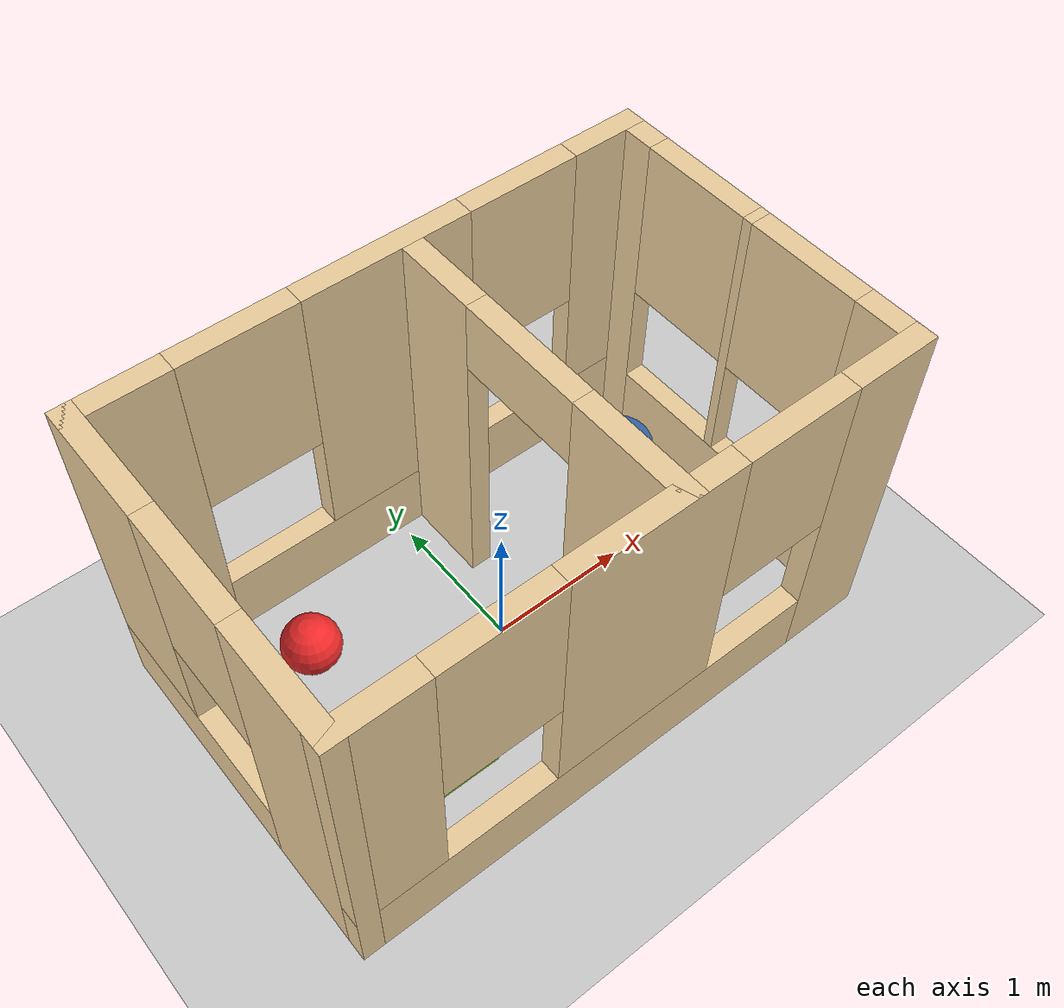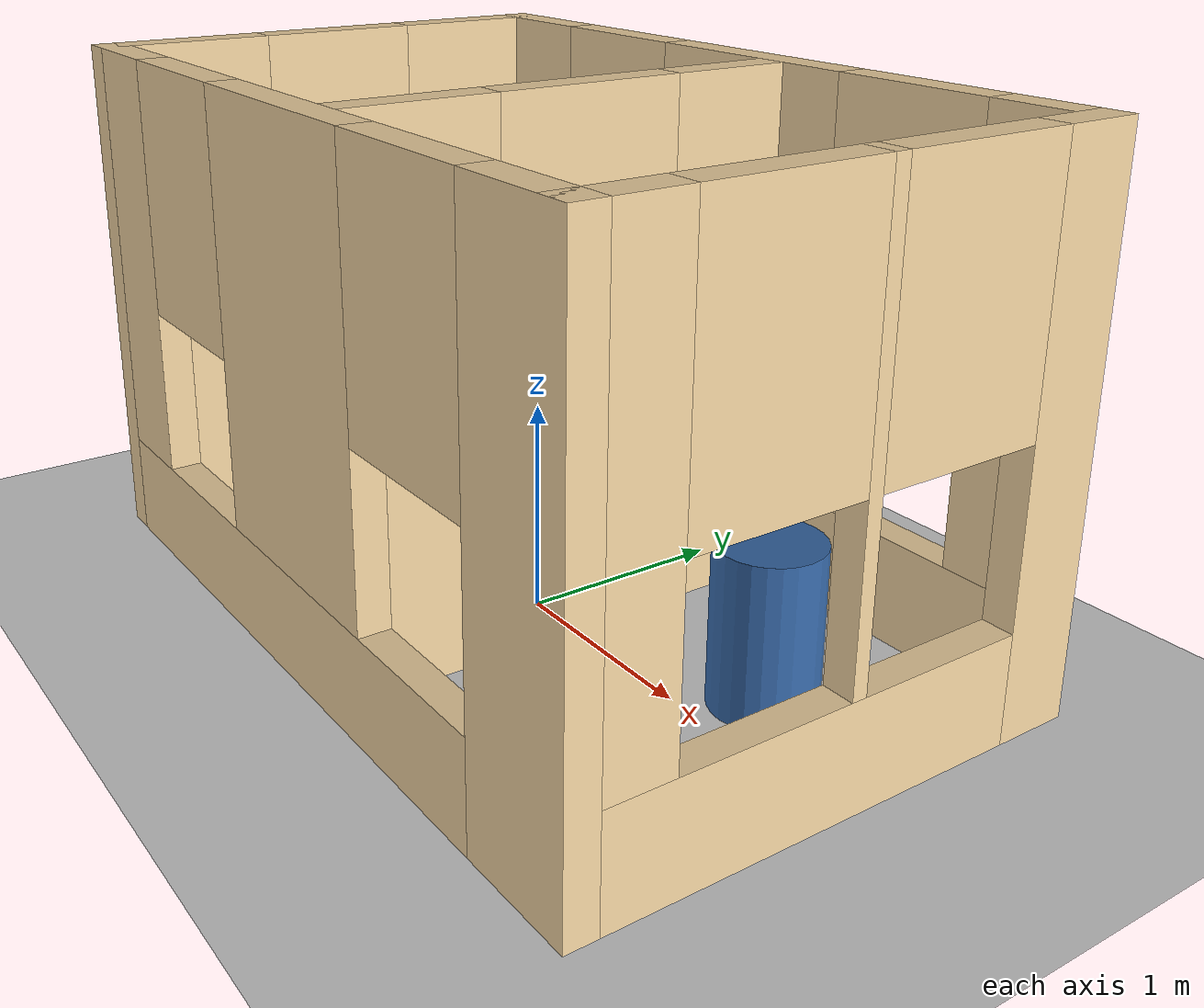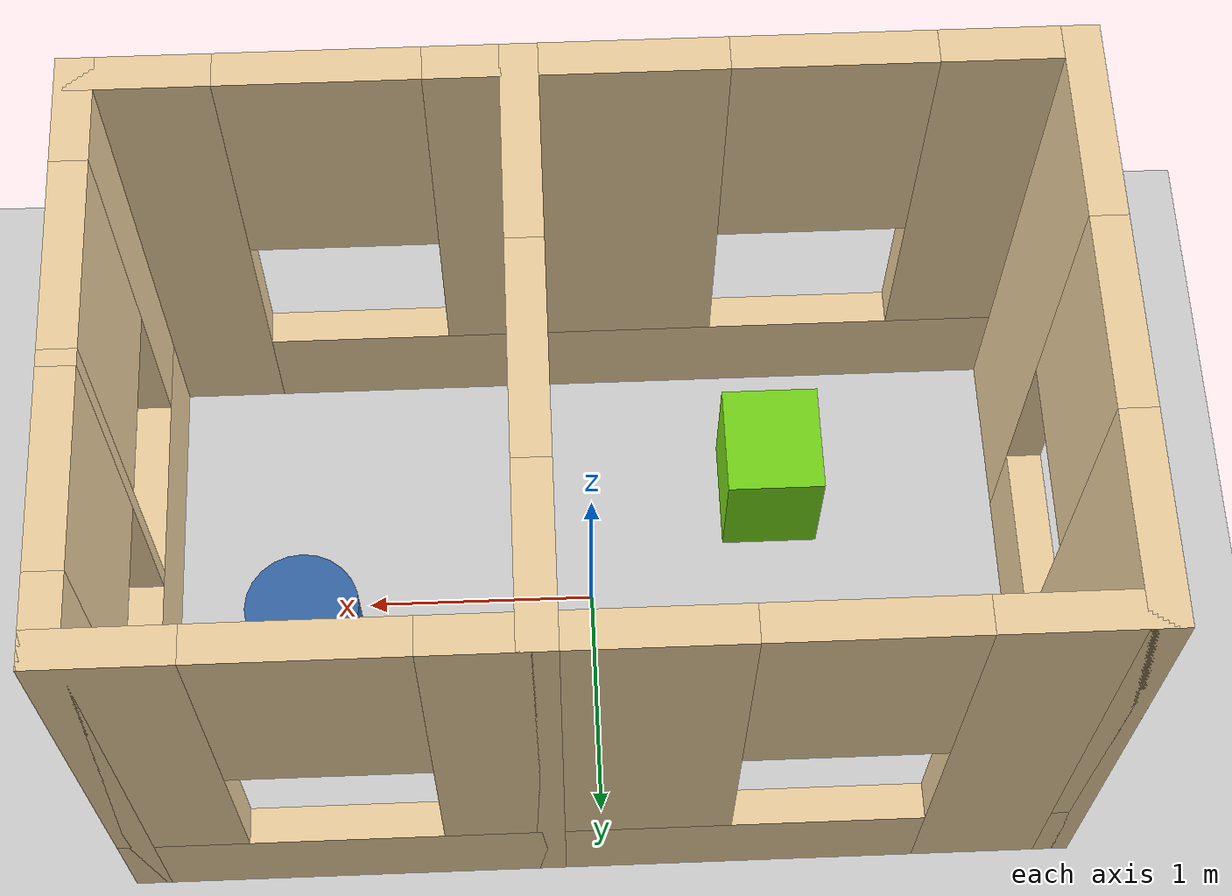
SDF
<sdf version="1.6">
 <world name="default">
  <light name="sun" type="directional">
   <pose>0 0 10 0 -0 0</pose>
   <diffuse>0.8 0.8 0.8 1</diffuse>
   <specular>0.2 0.2 0.2 1</specular>
   <attenuation>
    <range>1000</range>
    <constant>0.9</constant>
    <linear>0.01</linear>
    <quadratic>0.001</quadratic>
   </attenuation>
   <direction>-0.5 0.1 -0.9</direction>
  </light>
  <model name="ground_plane">
   <static>1</static>
   <link name="link">
    <collision name="collision">
     <geometry><plane><normal>0 0 1</normal><size>100 100</size></plane></geometry>
     <surface>
      <contact><collide_bitmask>65535</collide_bitmask></contact>
      <friction><ode><mu>100</mu><mu2>50</mu2></ode></friction>
     </surface>
    </collision>
    <visual name="visual">
     <cast_shadows>0</cast_shadows>
     <geometry><plane><normal>0 0 1</normal><size>100 100</size></plane></geometry>
     <material>
      <script><uri>file://media/materials/scripts/gazebo.material</uri><name>Gazebo/Grey</name></script>
     </material>
    </visual>
   </link>
  </model>
  <gravity>0 0 -9.8</gravity>
  <magnetic_field>6e-06 2.3e-05 -4.2e-05</magnetic_field>
  <atmosphere type="adiabatic"/>
  <physics name="default_physics" default="0" type="ode">
   <max_step_size>0.001</max_step_size>
   <real_time_factor>1</real_time_factor>
   <real_time_update_rate>1000</real_time_update_rate>
  </physics>
  <scene><ambient>0.4 0.4 0.4 1</ambient><background>0.7 0.7 0.7 1</background><shadows>1</shadows></scene>
  <spherical_coordinates>
   <surface_model>EARTH_WGS84</surface_model>
   <latitude_deg>0</latitude_deg>
   <longitude_deg>0</longitude_deg>
   <elevation>0</elevation>
   <heading_deg>0</heading_deg>
  </spherical_coordinates>
  <model name="house">
   <link name="Wall_0">
    <pose>-1.925 0 0 0 -0 1.5708</pose>
    <visual name="Wall_0_Visual_0">
     <pose>-0.8225 0 1.25 0 -0 0</pose>
     <geometry><box><size>0.855 0.15 2.5</size></box></geometry>
     <material>
      <script><uri>file://media/materials/scripts/gazebo.material</uri><name>Gazebo/Grey</name></script>
      <ambient>0.921569 0.807843 0.615686 1</ambient>
     </material>
     <meta><layer>0</layer></meta>
    </visual>
    <collision name="Wall_0_Collision_0">
     <geometry><box><size>0.855 0.15 2.5</size></box></geometry>
     <pose>-0.8225 0 1.25 0 -0 0</pose>
    </collision>
    <visual name="Wall_0_Visual_1">
     <pose>0.4275 0 0.25 0 -0 0</pose>
     <geometry><box><size>1.645 0.15 0.5</size></box></geometry>
     <material>
      <script><uri>file://media/materials/scripts/gazebo.material</uri><name>Gazebo/Grey</name></script>
      <ambient>0.921569 0.807843 0.615686 1</ambient>
     </material>
     <meta><layer>0</layer></meta>
    </visual>
    <collision name="Wall_0_Collision_1">
     <geometry><box><size>1.645 0.15 0.5</size></box></geometry>
     <pose>0.4275 0 0.25 0 -0 0</pose>
    </collision>
    <visual name="Wall_0_Visual_2">
     <pose>0.8275 0 1.5 0 -0 0</pose>
     <geometry><box><size>0.845 0.15 2</size></box></geometry>
     <material>
      <script><uri>file://media/materials/scripts/gazebo.material</uri><name>Gazebo/Grey</name></script>
      <ambient>0.921569 0.807843 0.615686 1</ambient>
     </material>
     <meta><layer>0</layer></meta>
    </visual>
    <collision name="Wall_0_Collision_2">
     <geometry><box><size>0.845 0.15 2</size></box></geometry>
     <pose>0.8275 0 1.5 0 -0 0</pose>
    </collision>
    <visual name="Wall_0_Visual_3">
     <pose>0.005 0 1.9 0 -0 0</pose>
     <geometry><box><size>0.8 0.15 1.2</size></box></geometry>
     <material>
      <script><uri>file://media/materials/scripts/gazebo.material</uri><name>Gazebo/Grey</name></script>
      <ambient>0.921569 0.807843 0.615686 1</ambient>
     </material>
     <meta><layer>0</layer></meta>
    </visual>
    <collision name="Wall_0_Collision_3">
     <geometry><box><size>0.8 0.15 1.2</size></box></geometry>
     <pose>0.005 0 1.9 0 -0 0</pose>
    </collision>
   </link>
   <link name="Wall_1">
    <pose>0 1.175 0 0 -0 0</pose>
    <visual name="Wall_1_Visual_0">
     <pose>-1.6625 0 1.25 0 -0 0</pose>
     <geometry><box><size>0.675 0.15 2.5</size></box></geometry>
     <material>
      <script><uri>file://media/materials/scripts/gazebo.material</uri><name>Gazebo/Grey</name></script>
      <ambient>0.921569 0.807843 0.615686 1</ambient>
     </material>
     <meta><layer>0</layer></meta>
    </visual>
    <collision name="Wall_1_Collision_0">
     <geometry><box><size>0.675 0.15 2.5</size></box></geometry>
     <pose>-1.6625 0 1.25 0 -0 0</pose>
    </collision>
    <visual name="Wall_1_Visual_1">
     <pose>0.3375 0 0.25 0 -0 0</pose>
     <geometry><box><size>3.325 0.15 0.5</size></box></geometry>
     <material>
      <script><uri>file://media/materials/scripts/gazebo.material</uri><name>Gazebo/Grey</name></script>
      <ambient>0.921569 0.807843 0.615686 1</ambient>
     </material>
     <meta><layer>0</layer></meta>
    </visual>
    <collision name="Wall_1_Collision_1">
     <geometry><box><size>3.325 0.15 0.5</size></box></geometry>
     <pose>0.3375 0 0.25 0 -0 0</pose>
    </collision>
    <visual name="Wall_1_Visual_2">
     <pose>0.065 0 1.5 0 -0 0</pose>
     <geometry><box><size>1.18 0.15 2</size></box></geometry>
     <material>
      <script><uri>file://media/materials/scripts/gazebo.material</uri><name>Gazebo/Grey</name></script>
      <ambient>0.921569 0.807843 0.615686 1</ambient>
     </material>
     <meta><layer>0</layer></meta>
    </visual>
    <collision name="Wall_1_Collision_2">
     <geometry><box><size>1.18 0.15 2</size></box></geometry>
     <pose>0.065 0 1.5 0 -0 0</pose>
    </collision>
    <visual name="Wall_1_Visual_3">
     <pose>1.7275 0 1.5 0 -0 0</pose>
     <geometry><box><size>0.545 0.15 2</size></box></geometry>
     <material>
      <script><uri>file://media/materials/scripts/gazebo.material</uri><name>Gazebo/Grey</name></script>
      <ambient>0.921569 0.807843 0.615686 1</ambient>
     </material>
     <meta><layer>0</layer></meta>
    </visual>
    <collision name="Wall_1_Collision_3">
     <geometry><box><size>0.545 0.15 2</size></box></geometry>
     <pose>1.7275 0 1.5 0 -0 0</pose>
    </collision>
    <visual name="Wall_1_Visual_4">
     <pose>-0.925 0 1.9 0 -0 0</pose>
     <geometry><box><size>0.8 0.15 1.2</size></box></geometry>
     <material>
      <script><uri>file://media/materials/scripts/gazebo.material</uri><name>Gazebo/Grey</name></script>
      <ambient>0.921569 0.807843 0.615686 1</ambient>
     </material>
     <meta><layer>0</layer></meta>
    </visual>
    <collision name="Wall_1_Collision_4">
     <geometry><box><size>0.8 0.15 1.2</size></box></geometry>
     <pose>-0.925 0 1.9 0 -0 0</pose>
    </collision>
    <visual name="Wall_1_Visual_5">
     <pose>1.055 0 1.9 0 -0 0</pose>
     <geometry><box><size>0.8 0.15 1.2</size></box></geometry>
     <material>
      <script><uri>file://media/materials/scripts/gazebo.material</uri><name>Gazebo/Grey</name></script>
      <ambient>0.921569 0.807843 0.615686 1</ambient>
     </material>
     <meta><layer>0</layer></meta>
    </visual>
    <collision name="Wall_1_Collision_5">
     <geometry><box><size>0.8 0.15 1.2</size></box></geometry>
     <pose>1.055 0 1.9 0 -0 0</pose>
    </collision>
   </link>
   <link name="Wall_3">
    <pose>0 -1.175 0 0 -0 3.14159</pose>
    <visual name="Wall_3_Visual_0">
     <pose>-1.7025 0 1.25 0 -0 0</pose>
     <geometry><box><size>0.595 0.15 2.5</size></box></geometry>
     <material>
      <script><uri>file://media/materials/scripts/gazebo.material</uri><name>Gazebo/Grey</name></script>
      <ambient>0.921569 0.807843 0.615686 1</ambient>
     </material>
     <meta><layer>0</layer></meta>
    </visual>
    <collision name="Wall_3_Collision_0">
     <geometry><box><size>0.595 0.15 2.5</size></box></geometry>
     <pose>-1.7025 0 1.25 0 -0 0</pose>
    </collision>
    <visual name="Wall_3_Visual_1">
     <pose>0.2975 0 0.25 0 -0 0</pose>
     <geometry><box><size>3.405 0.15 0.5</size></box></geometry>
     <material>
      <script><uri>file://media/materials/scripts/gazebo.material</uri><name>Gazebo/Grey</name></script>
      <ambient>0.921569 0.807843 0.615686 1</ambient>
     </material>
     <meta><layer>0</layer></meta>
    </visual>
    <collision name="Wall_3_Collision_1">
     <geometry><box><size>3.405 0.15 0.5</size></box></geometry>
     <pose>0.2975 0 0.25 0 -0 0</pose>
    </collision>
    <visual name="Wall_3_Visual_2">
     <pose>-0.015 0 1.5 0 -0 0</pose>
     <geometry><box><size>1.18 0.15 2</size></box></geometry>
     <material>
      <script><uri>file://media/materials/scripts/gazebo.material</uri><name>Gazebo/Grey</name></script>
      <ambient>0.921569 0.807843 0.615686 1</ambient>
     </material>
     <meta><layer>0</layer></meta>
    </visual>
    <collision name="Wall_3_Collision_2">
     <geometry><box><size>1.18 0.15 2</size></box></geometry>
     <pose>-0.015 0 1.5 0 -0 0</pose>
    </collision>
    <visual name="Wall_3_Visual_3">
     <pose>1.6875 0 1.5 0 -0 0</pose>
     <geometry><box><size>0.625 0.15 2</size></box></geometry>
     <material>
      <script><uri>file://media/materials/scripts/gazebo.material</uri><name>Gazebo/Grey</name></script>
      <ambient>0.921569 0.807843 0.615686 1</ambient>
     </material>
     <meta><layer>0</layer></meta>
    </visual>
    <collision name="Wall_3_Collision_3">
     <geometry><box><size>0.625 0.15 2</size></box></geometry>
     <pose>1.6875 0 1.5 0 -0 0</pose>
    </collision>
    <visual name="Wall_3_Visual_4">
     <pose>-1.005 0 1.9 0 -0 0</pose>
     <geometry><box><size>0.8 0.15 1.2</size></box></geometry>
     <material>
      <script><uri>file://media/materials/scripts/gazebo.material</uri><name>Gazebo/Grey</name></script>
      <ambient>0.921569 0.807843 0.615686 1</ambient>
     </material>
     <meta><layer>0</layer></meta>
    </visual>
    <collision name="Wall_3_Collision_4">
     <geometry><box><size>0.8 0.15 1.2</size></box></geometry>
     <pose>-1.005 0 1.9 0 -0 0</pose>
    </collision>
    <visual name="Wall_3_Visual_5">
     <pose>0.975 0 1.9 0 -0 0</pose>
     <geometry><box><size>0.8 0.15 1.2</size></box></geometry>
     <material>
      <script><uri>file://media/materials/scripts/gazebo.material</uri><name>Gazebo/Grey</name></script>
      <ambient>0.921569 0.807843 0.615686 1</ambient>
     </material>
     <meta><layer>0</layer></meta>
    </visual>
    <collision name="Wall_3_Collision_5">
     <geometry><box><size>0.8 0.15 1.2</size></box></geometry>
     <pose>0.975 0 1.9 0 -0 0</pose>
    </collision>
   </link>
   <link name="Wall_6">
    <pose>0.235 0 0 0 -0 -1.5708</pose>
    <visual name="Wall_6_Visual_0">
     <pose>-0.8825 0 1.25 0 -0 0</pose>
     <geometry><box><size>0.735 0.15 2.5</size></box></geometry>
     <material>
      <script><uri>file://media/materials/scripts/gazebo.material</uri><name>Gazebo/Grey</name></script>
      <ambient>0.921569 0.807843 0.615686 1</ambient>
     </material>
     <meta><layer>0</layer></meta>
    </visual>
    <collision name="Wall_6_Collision_0">
     <geometry><box><size>0.735 0.15 2.5</size></box></geometry>
     <pose>-0.8825 0 1.25 0 -0 0</pose>
    </collision>
    <visual name="Wall_6_Visual_1">
     <pose>0.8175 0 1.25 0 -0 0</pose>
     <geometry><box><size>0.865 0.15 2.5</size></box></geometry>
     <material>
      <script><uri>file://media/materials/scripts/gazebo.material</uri><name>Gazebo/Grey</name></script>
      <ambient>0.921569 0.807843 0.615686 1</ambient>
     </material>
     <meta><layer>0</layer></meta>
    </visual>
    <collision name="Wall_6_Collision_1">
     <geometry><box><size>0.865 0.15 2.5</size></box></geometry>
     <pose>0.8175 0 1.25 0 -0 0</pose>
    </collision>
    <visual name="Wall_6_Visual_2">
     <pose>-0.065 0 2.25 0 -0 0</pose>
     <geometry><box><size>0.9 0.15 0.5</size></box></geometry>
     <material>
      <script><uri>file://media/materials/scripts/gazebo.material</uri><name>Gazebo/Grey</name></script>
      <ambient>0.921569 0.807843 0.615686 1</ambient>
     </material>
     <meta><layer>0</layer></meta>
    </visual>
    <collision name="Wall_6_Collision_2">
     <geometry><box><size>0.9 0.15 0.5</size></box></geometry>
     <pose>-0.065 0 2.25 0 -0 0</pose>
    </collision>
   </link>
   <link name="Wall_8">
    <pose>1.925 0 0 0 -0 -1.5708</pose>
    <visual name="Wall_8_Visual_0">
     <pose>-1.0675 0 1.25 0 -0 0</pose>
     <geometry><box><size>0.365 0.15 2.5</size></box></geometry>
     <material>
      <script><uri>file://media/materials/scripts/gazebo.material</uri><name>Gazebo/Grey</name></script>
      <ambient>0.921569 0.807843 0.615686 1</ambient>
     </material>
     <meta><layer>0</layer></meta>
    </visual>
    <collision name="Wall_8_Collision_0">
     <geometry><box><size>0.365 0.15 2.5</size></box></geometry>
     <pose>-1.0675 0 1.25 0 -0 0</pose>
    </collision>
    <visual name="Wall_8_Visual_1">
     <pose>0.1825 0 0.25 0 -0 0</pose>
     <geometry><box><size>2.135 0.15 0.5</size></box></geometry>
     <material>
      <script><uri>file://media/materials/scripts/gazebo.material</uri><name>Gazebo/Grey</name></script>
      <ambient>0.921569 0.807843 0.615686 1</ambient>
     </material>
     <meta><layer>0</layer></meta>
    </visual>
    <collision name="Wall_8_Collision_1">
     <geometry><box><size>2.135 0.15 0.5</size></box></geometry>
     <pose>0.1825 0 0.25 0 -0 0</pose>
    </collision>
    <visual name="Wall_8_Visual_2">
     <pose>-0.05 0 1.5 0 -0 0</pose>
     <geometry><box><size>0.07 0.15 2</size></box></geometry>
     <material>
      <script><uri>file://media/materials/scripts/gazebo.material</uri><name>Gazebo/Grey</name></script>
      <ambient>0.921569 0.807843 0.615686 1</ambient>
     </material>
     <meta><layer>0</layer></meta>
    </visual>
    <collision name="Wall_8_Collision_2">
     <geometry><box><size>0.07 0.15 2</size></box></geometry>
     <pose>-0.05 0 1.5 0 -0 0</pose>
    </collision>
    <visual name="Wall_8_Visual_3">
     <pose>1.0175 0 1.5 0 -0 0</pose>
     <geometry><box><size>0.465 0.15 2</size></box></geometry>
     <material>
      <script><uri>file://media/materials/scripts/gazebo.material</uri><name>Gazebo/Grey</name></script>
      <ambient>0.921569 0.807843 0.615686 1</ambient>
     </material>
     <meta><layer>0</layer></meta>
    </visual>
    <collision name="Wall_8_Collision_3">
     <geometry><box><size>0.465 0.15 2</size></box></geometry>
     <pose>1.0175 0 1.5 0 -0 0</pose>
    </collision>
    <visual name="Wall_8_Visual_4">
     <pose>-0.485 0 1.9 0 -0 0</pose>
     <geometry><box><size>0.8 0.15 1.2</size></box></geometry>
     <material>
      <script><uri>file://media/materials/scripts/gazebo.material</uri><name>Gazebo/Grey</name></script>
      <ambient>0.921569 0.807843 0.615686 1</ambient>
     </material>
     <meta><layer>0</layer></meta>
    </visual>
    <collision name="Wall_8_Collision_4">
     <geometry><box><size>0.8 0.15 1.2</size></box></geometry>
     <pose>-0.485 0 1.9 0 -0 0</pose>
    </collision>
    <visual name="Wall_8_Visual_5">
     <pose>0.385 0 1.9 0 -0 0</pose>
     <geometry><box><size>0.8 0.15 1.2</size></box></geometry>
     <material>
      <script><uri>file://media/materials/scripts/gazebo.material</uri><name>Gazebo/Grey</name></script>
      <ambient>0.921569 0.807843 0.615686 1</ambient>
     </material>
     <meta><layer>0</layer></meta>
    </visual>
    <collision name="Wall_8_Collision_5">
     <geometry><box><size>0.8 0.15 1.2</size></box></geometry>
     <pose>0.385 0 1.9 0 -0 0</pose>
    </collision>
   </link>
   <static>1</static>
  </model>
  <model name="blue_cylinder">
   <link name="link_2">
    <inertial>
     <mass>0.17277</mass>
     <inertia>
      <ixx>0.0105185</ixx>
      <ixy>0</ixy>
      <ixz>0</ixz>
      <iyy>0.0105185</iyy>
      <iyz>0</iyz>
      <izz>0.0049996</izz>
     </inertia>
    </inertial>
    <visual name="visual">
     <geometry><cylinder><radius>0.240574</radius><length>0.746294</length></cylinder></geometry>
     <material>
      <lighting>1</lighting>
      <script><uri>file://media/materials/scripts/gazebo.material</uri><name>Gazebo/Grey</name></script>
      <shader type="pixel"><normal_map>__default__</normal_map></shader>
      <ambient>0.204 0.396 0.643 1</ambient>
      <diffuse>0.7 0.7 0.7 1</diffuse>
      <specular>0.01 0.01 0.01 1</specular>
      <emissive>0 0 0 1</emissive>
     </material>
    </visual>
    <collision name="collision">
     <geometry><cylinder><radius>0.240574</radius><length>0.746294</length></cylinder></geometry>
     <surface>
      <friction>
       <ode><mu>1</mu><mu2>1</mu2><fdir1>0 0 0</fdir1><slip1>0</slip1><slip2>0</slip2></ode>
       <torsional>
        <coefficient>1</coefficient>
        <patch_radius>0</patch_radius>
        <surface_radius>0</surface_radius>
        <use_patch_radius>1</use_patch_radius>
        <ode><slip>0</slip></ode>
       </torsional>
      </friction>
      <bounce><restitution_coefficient>0</restitution_coefficient><threshold>1e+06</threshold></bounce>
      <contact>
       <collide_without_contact>0</collide_without_contact>
       <collide_without_contact_bitmask>1</collide_without_contact_bitmask>
       <collide_bitmask>1</collide_bitmask>
       <ode>
        <soft_cfm>0</soft_cfm>
        <soft_erp>0.2</soft_erp>
        <kp>1e+13</kp>
        <kd>1</kd>
        <max_vel>0.01</max_vel>
        <min_depth>0</min_depth>
       </ode>
       <bullet>
        <split_impulse>1</split_impulse>
        <split_impulse_penetration_threshold>-0.01</split_impulse_penetration_threshold>
        <soft_cfm>0</soft_cfm>
        <soft_erp>0.2</soft_erp>
        <kp>1e+13</kp>
        <kd>1</kd>
       </bullet>
      </contact>
     </surface>
    </collision>
   </link>
   <static>0</static>
   <pose>1.22911 0.310497 0.373138 0 -0 0</pose>
  </model>
  <model name="green_rectangle">
   <link name="link_1">
    <inertial>
     <mass>0.11488</mass>
     <inertia>
      <ixx>0.00524452</ixx>
      <ixy>0</ixy>
      <ixz>0</ixz>
      <iyy>0.00474288</iyy>
      <iyz>0</iyz>
      <izz>0.00394831</izz>
     </inertia>
    </inertial>
    <visual name="visual">
     <geometry><box><size>0.42428 0.482093 0.561615</size></box></geometry>
     <material>
      <lighting>1</lighting>
      <script><uri>file://media/materials/scripts/gazebo.material</uri><name>Gazebo/Grey</name></script>
      <shader type="pixel"><normal_map>__default__</normal_map></shader>
      <ambient>0.451 0.824 0.086 1</ambient>
      <diffuse>0.7 0.7 0.7 1</diffuse>
      <specular>0.01 0.01 0.01 1</specular>
      <emissive>0 0 0 1</emissive>
     </material>
    </visual>
    <collision name="collision">
     <geometry><box><size>0.42428 0.482093 0.561615</size></box></geometry>
     <surface>
      <friction>
       <ode><mu>1</mu><mu2>1</mu2><fdir1>0 0 0</fdir1><slip1>0</slip1><slip2>0</slip2></ode>
       <torsional>
        <coefficient>1</coefficient>
        <patch_radius>0</patch_radius>
        <surface_radius>0</surface_radius>
        <use_patch_radius>1</use_patch_radius>
        <ode><slip>0</slip></ode>
       </torsional>
      </friction>
      <bounce><restitution_coefficient>0</restitution_coefficient><threshold>1e+06</threshold></bounce>
      <contact>
       <collide_without_contact>0</collide_without_contact>
       <collide_without_contact_bitmask>1</collide_without_contact_bitmask>
       <collide_bitmask>1</collide_bitmask>
       <ode>
        <soft_cfm>0</soft_cfm>
        <soft_erp>0.2</soft_erp>
        <kp>1e+13</kp>
        <kd>1</kd>
        <max_vel>0.01</max_vel>
        <min_depth>0</min_depth>
       </ode>
       <bullet>
        <split_impulse>1</split_impulse>
        <split_impulse_penetration_threshold>-0.01</split_impulse_penetration_threshold>
        <soft_cfm>0</soft_cfm>
        <soft_erp>0.2</soft_erp>
        <kp>1e+13</kp>
        <kd>1</kd>
       </bullet>
      </contact>
     </surface>
    </collision>
   </link>
   <static>0</static>
   <pose>-0.81888 -0.490643 0.280806 -7e-06 -1.4e-05 1e-06</pose>
  </model>
  <model name="red_sphere">
   <link name="link_0">
    <inertial>
     <mass>0.0674697</mass>
     <inertia>
      <ixx>0.00111811</ixx>
      <ixy>0</ixy>
      <ixz>0</ixz>
      <iyy>0.00111811</iyy>
      <iyz>0</iyz>
      <izz>0.00111811</izz>
     </inertia>
    </inertial>
    <pose>0 5e-06 0 0 -0 0</pose>
    <visual name="visual">
     <geometry><sphere><radius>0.203544</radius></sphere></geometry>
     <material>
      <lighting>1</lighting>
      <script><uri>file://media/materials/scripts/gazebo.material</uri><name>Gazebo/Grey</name></script>
      <shader type="pixel"><normal_map>__default__</normal_map></shader>
      <ambient>0.937 0.161 0.161 1</ambient>
      <diffuse>0.7 0.7 0.7 1</diffuse>
      <specular>0.01 0.01 0.01 1</specular>
      <emissive>0 0 0 1</emissive>
     </material>
    </visual>
    <collision name="collision">
     <geometry><sphere><radius>0.203544</radius></sphere></geometry>
     <surface>
      <friction>
       <ode><mu>1</mu><mu2>1</mu2><fdir1>0 0 0</fdir1><slip1>0</slip1><slip2>0</slip2></ode>
       <torsional>
        <coefficient>1</coefficient>
        <patch_radius>0</patch_radius>
        <surface_radius>0</surface_radius>
        <use_patch_radius>1</use_patch_radius>
        <ode><slip>0</slip></ode>
       </torsional>
      </friction>
      <bounce><restitution_coefficient>0</restitution_coefficient><threshold>1e+06</threshold></bounce>
      <contact>
       <collide_without_contact>0</collide_without_contact>
       <collide_without_contact_bitmask>1</collide_without_contact_bitmask>
       <collide_bitmask>1</collide_bitmask>
       <ode>
        <soft_cfm>0</soft_cfm>
        <soft_erp>0.2</soft_erp>
        <kp>1e+13</kp>
        <kd>1</kd>
        <max_vel>0.01</max_vel>
        <min_depth>0</min_depth>
       </ode>
       <bullet>
        <split_impulse>1</split_impulse>
        <split_impulse_penetration_threshold>-0.01</split_impulse_penetration_threshold>
        <soft_cfm>0</soft_cfm>
        <soft_erp>0.2</soft_erp>
        <kp>1e+13</kp>
        <kd>1</kd>
       </bullet>
      </contact>
     </surface>
    </collision>
   </link>
   <static>0</static>
   <pose>-1.10097 0.581306 0.203544 0 -0 0</pose>
  </model>
 </world>
</sdf>
